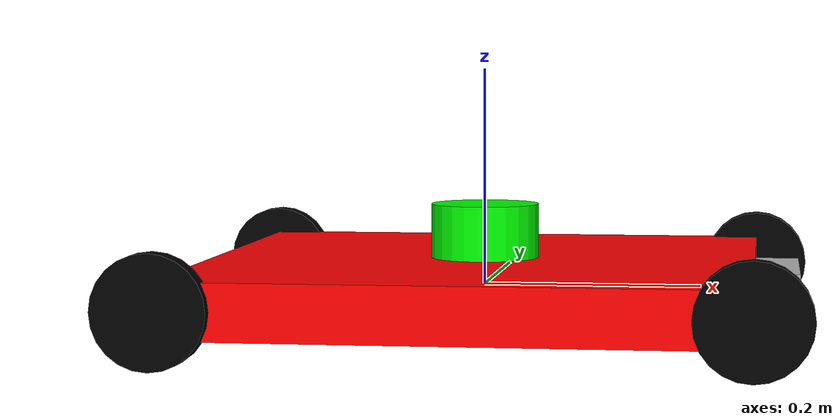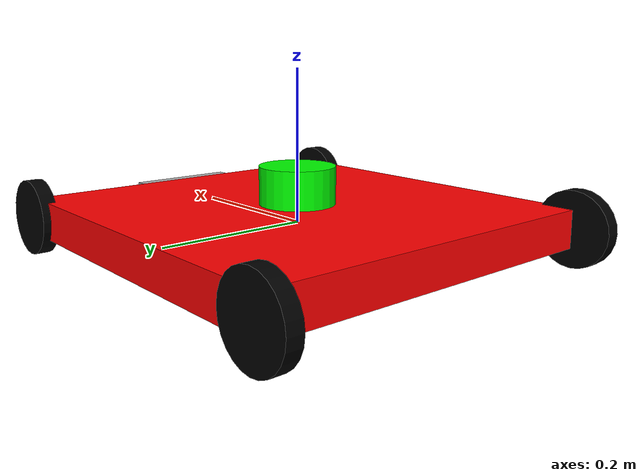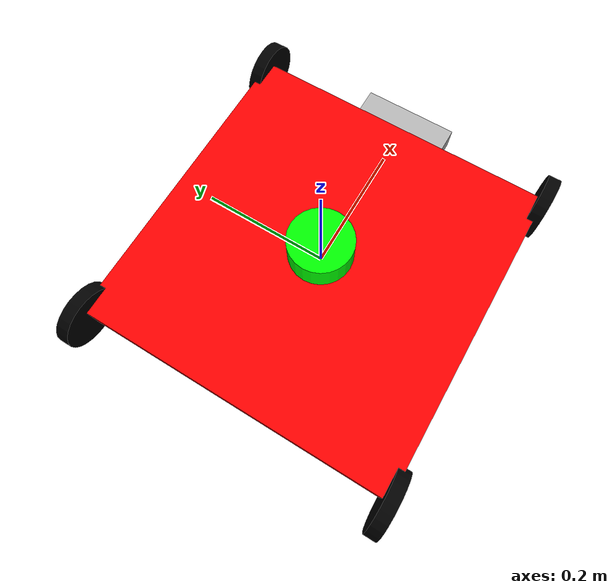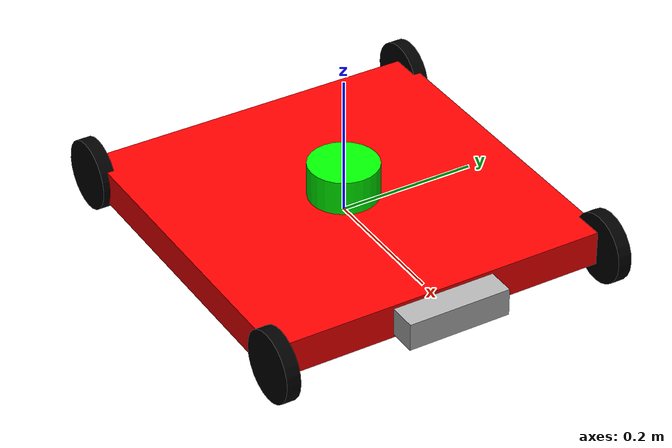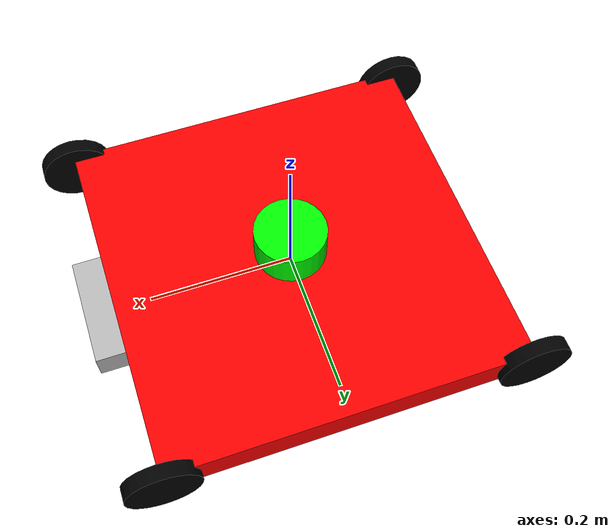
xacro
<?xml version="1.0"?>
<robot xmlns:xacro="http://www.ros.org/wiki/xacro" name="CRAP">
  <!-- Define the base link of the robot -->
    <link name="base_footprint">
      <visual>
          <origin xyz="0 0 0" rpy="0 0 0" />
          <geometry>
              <box size="0.001 0.001 0.001" />
          </geometry>
      </visual>
  </link>
  <gazebo reference="base_footprint">
      <turnGravityOff>false</turnGravityOff>
  </gazebo>

  <joint name="base_footprint_joint" type="fixed">
      <parent link="base_footprint"/>
      <child link="base_link" />
  </joint>

  <link name="base_link">
    <inertial>
      <mass value="10"/>
      <origin xyz="0 0 0" rpy="0 0 0"/>
      <inertia ixx="0.1" ixy="0" ixz="0" iyy="0.1" iyz="0" izz="0.1"/>
    </inertial>

    <visual>
      <origin xyz="0 0 0" rpy="0 0 0"/>
      <geometry>
        <box size="0.5 0.5 0.05"/>
      </geometry>
      <material name="red">
        <color rgba="1 0 0 1"/>
      </material>
    </visual>

    <collision>
      <geometry>
          <box size="0.5 0.5 0.05"/>
      </geometry>
    </collision>
  </link>

  <!-- Define the four  wheels -->
  <xacro:include filename="wheel.xacro"/>
  <xacro:wheel name="front_left_wheel" parent="base_link" x="0.25" y="0.25" />
  <xacro:wheel name="front_right_wheel" parent="base_link" x="0.25" y="-0.25" />
  <xacro:wheel name="rear_left_wheel" parent="base_link" x="-0.25" y="0.25" />
  <xacro:wheel name="rear_right_wheel" parent="base_link" x="-0.25" y="-0.25" />

  <!-- Define the LIDAR sensor -->
  <xacro:include filename="lidar_gazebo.xacro"/>
  <xacro:rplidar prefix="lidar" parent="base_link" x="0" y="0" z="0.05"/>

  <!-- Define the rgbd camera -->
  <xacro:include filename="kinect_gazebo.xacro"/>
  <xacro:kinect_camera prefix="kinect" parent="base_link" x="0.27" y="0" z="0"/>

  <gazebo>
      <plugin name='skid_steer_drive' filename='libgazebo_ros_diff_drive.so'>

      <!-- Update rate -->
      <update_rate>100</update_rate>

      <!-- Number of wheel pairs -->
      <num_wheel_pairs>2</num_wheel_pairs>

      <!-- wheels0 -->
      <left_joint>front_left_wheel_joint</left_joint>
      <right_joint>front_right_wheel_joint</right_joint>

      <!-- wheels1-->
      <left_joint>rear_left_wheel_joint</left_joint>
      <right_joint>rear_right_wheel_joint</right_joint>

      <!-- kinematics -->
      <wheel_separation>0.5</wheel_separation>
      <wheel_separation>0.5</wheel_separation>

      <wheel_diameter>0.1</wheel_diameter>
      <wheel_diameter>0.1</wheel_diameter>

      <!-- limits -->
      <max_wheel_torque>20</max_wheel_torque>
      <max_wheel_acceleration>1.0</max_wheel_acceleration>

      <!-- output -->
      <publish_odom>true</publish_odom>
      <publish_odom_tf>true</publish_odom_tf>
      <publish_wheel_tf>true</publish_wheel_tf>

      <odometry_frame>odom</odometry_frame>
      <robot_base_frame>base_link</robot_base_frame>

      </plugin>
  </gazebo>

</robot>

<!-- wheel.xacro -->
<robot xmlns:xacro="http://www.ros.org/wiki/xacro" name="wheel_macro">
  <xacro:property name="M_PI" value="3.141592653589793"/>
  <xacro:property name="radius" value="0.05"/>
  <xacro:property name="thickness" value="0.02"/>

  <xacro:macro name="wheel" params="name parent x y">
    <!-- Define the wheel link -->
    <link name="${name}_link">
      <inertial>
        <mass value="1.0"/>
        <origin xyz="0 0 0" rpy="0 ${M_PI/2} ${M_PI/2}"/>
        <inertia ixx="0.005" ixy="0" ixz="0" iyy="0.005" iyz="0" izz="0.005"/>
      </inertial>

      <visual>
        <origin xyz="0 0 0" rpy="0 ${M_PI/2} ${M_PI/2}"/>
        <geometry>
          <cylinder radius="${radius}" length="${thickness}"/>
        </geometry>
        <material name="black">
          <color rgba="0 0 0 1"/>
        </material>
      </visual>

      <collision>
        <origin xyz="0.0 0.0 0.0" rpy="0 ${M_PI/2} ${M_PI/2}" />
          <geometry>
              <cylinder length="${thickness}" radius="${radius}"/>
          </geometry>
      </collision>
    </link>

    <!-- Define the wheel joint -->
    <joint name="${name}_joint" type="continuous">
      <origin xyz="${x} ${y} 0" rpy="0 0 0"/>
      <parent link="${parent}"/>
      <child link="${name}_link"/>
      <axis xyz="0 1 0"/>
      <limit effort="10000" velocity="1000" />
      <dynamics damping="1.0" friction="1.0" />
    </joint>

    <gazebo reference="${name}_link">
      <material>Gazebo/Blue</material>
      <kp>1000000.0</kp> <!-- kp and kd for rubber -->
      <kd>100.0</kd>
      <mu1>1.0</mu1>
      <mu2>1.0</mu2>
      <maxVel>1.0</maxVel>
      <minDepth>0.00</minDepth>
    </gazebo>

    <transmission name="${name}_wheel_joint_trans">
        <type>transmission_interface/SimpleTransmission</type>
        <joint name="${name}_joint" >
            <hardwareInterface>hardware_interface/VelocityJointInterface</hardwareInterface>
        </joint>
        <actuator name="${name}_joint_motor">
            <hardwareInterface>hardware_interface/VelocityJointInterface</hardwareInterface>
            <mechanicalReduction>1</mechanicalReduction>
        </actuator>
    </transmission>

  </xacro:macro>

</robot>

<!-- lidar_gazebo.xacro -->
<robot xmlns:xacro="http://www.ros.org/wiki/xacro" name="laser">

    <xacro:macro name="rplidar" params="prefix parent x y z">
        <!-- Create laser reference frame -->
        <link name="${prefix}_link">
            <inertial>
                <mass value="0.1" />
                <origin xyz="0 0 0" />
                <inertia ixx="0.01" ixy="0.0" ixz="0.0"
                         iyy="0.01" iyz="0.0"
                         izz="0.01" />
            </inertial>

            <visual>
                <origin xyz=" 0 0 0 " rpy="0 0 0" />
                <geometry>
                    <cylinder length="0.05" radius="0.05"/>
                </geometry>
                <material name="green">
                    <color rgba="0 1 0 1"/>
                </material>
            </visual>

            <collision>
                <origin xyz="0.0 0.0 0.0" rpy="0 0 0" />
                <geometry>
                    <cylinder length="0.06" radius="0.05"/>
                </geometry>
            </collision>
        </link>

        <joint name="${prefix}_joint" type="fixed">
            <origin xyz="${x} ${y} ${z}" rpy="0 0 0"/>
            <parent link="${parent}"/>
            <child link="${prefix}_link"/>
        </joint>

        <gazebo reference="${prefix}_link">
            <material>Gazebo/Black</material>
        </gazebo>

        <gazebo reference="${prefix}_link">
            <sensor type="ray" name="rplidar">
                <update_rate>20</update_rate>
                <ray>
                    <scan>
                      <horizontal>
                        <samples>360</samples>
                        <resolution>1</resolution>
                        <min_angle>-3</min_angle>
                        <max_angle>3</max_angle>
                      </horizontal>
                    </scan>
                    <range>
                      <min>0.10</min>
                      <max>30.0</max>
                      <resolution>0.01</resolution>
                    </range>
                    <noise>
                      <type>gaussian</type>
                      <mean>0.0</mean>
                      <stddev>0.01</stddev>
                    </noise>
                </ray>
                <plugin name="gazebo_rplidar" filename="libgazebo_ros_ray_sensor.so">
		      <ros>
			<namespace>/</namespace>
			<remapping>~/out:=scan</remapping>
		      </ros>
		      <output_type>sensor_msgs/LaserScan</output_type>
                </plugin>
            </sensor>
        </gazebo>

    </xacro:macro>
</robot>

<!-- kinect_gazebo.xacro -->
<robot xmlns:xacro="http://www.ros.org/wiki/xacro" name="kinect_camera">
    <xacro:property name="M_PI" value="3.141592653589793"/>
    <xacro:macro name="kinect_camera" params="prefix parent x y z">
        <!-- Create kinect reference frame -->
        <!-- Add mesh for kinect -->
        <link name="${prefix}_link">
            <origin xyz="0 0 0" rpy="0 0 0"/>
            <visual>
                <origin xyz="0 0 0" rpy="0 0 ${M_PI/2}"/>
                <geometry>
                    <box size="0.15 0.04 0.04" />
                </geometry>
            </visual>
            <collision>
                <geometry>
                    <box size="0.07 0.3 0.09"/>
                </geometry>
            </collision>
        </link>

        <joint name="${prefix}_optical_joint" type="fixed">
            <origin xyz="0 0 0" rpy="-1.5708 0 -1.5708"/>
            <parent link="${prefix}_link"/>
            <child link="${prefix}_frame_optical"/>
        </joint>

        <joint name="${prefix}_joint" type="fixed">
            <origin xyz="${x} ${y} ${z}" rpy="0 0 0"/>
            <parent link="${parent}"/>
            <child link="${prefix}_link"/>
        </joint>

        <link name="${prefix}_frame_optical"/>

        <gazebo reference="${prefix}_link">
            <sensor type="depth" name="${prefix}">
                <always_on>true</always_on>
                <update_rate>15.0</update_rate>
                <pose>0 0 0 0 0 0</pose>
                <camera name="kinect">
                    <horizontal_fov>${60.0*M_PI/180.0}</horizontal_fov>
                    <image>
                        <format>R8G8B8</format>
                        <width>640</width>
                        <height>480</height>
                    </image>
                    <clip>
                        <near>0.05</near>
                        <far>8.0</far>
                    </clip>
                </camera>
                <plugin name="${prefix}_controller" filename="libgazebo_ros_camera.so">
		 		 	<ros>
						<remapping>${prefix}/image_raw:=rgb/image_raw</remapping>
						<remapping>${prefix}/image_depth:=depth/image_raw</remapping>
						<remapping>${prefix}/camera_info:=rgb/camera_info</remapping>
						<remapping>${prefix}/camera_info_depth:=depth/camera_info</remapping>
						<remapping>${prefix}/points:=depth/points</remapping>
					</ros>
					<camera_name>${prefix}</camera_name>
					<frame_name>${prefix}_frame_optical</frame_name>
				    <hack_baseline>0.07</hack_baseline>
				    <min_depth>0.001</min_depth>
				    <max_depth>300.0</max_depth>
                </plugin>
            </sensor>
        </gazebo>

    </xacro:macro>
</robot>
